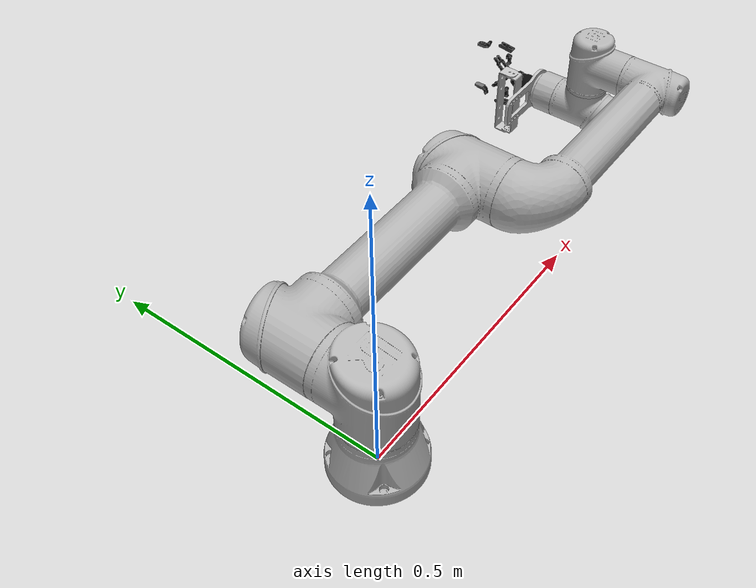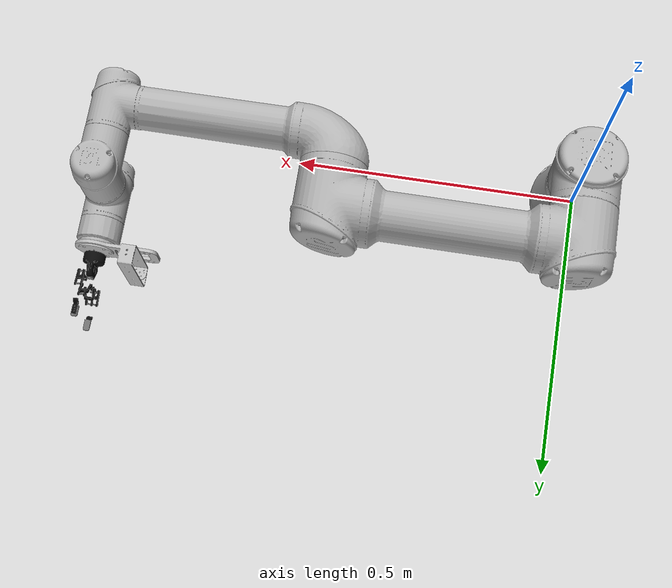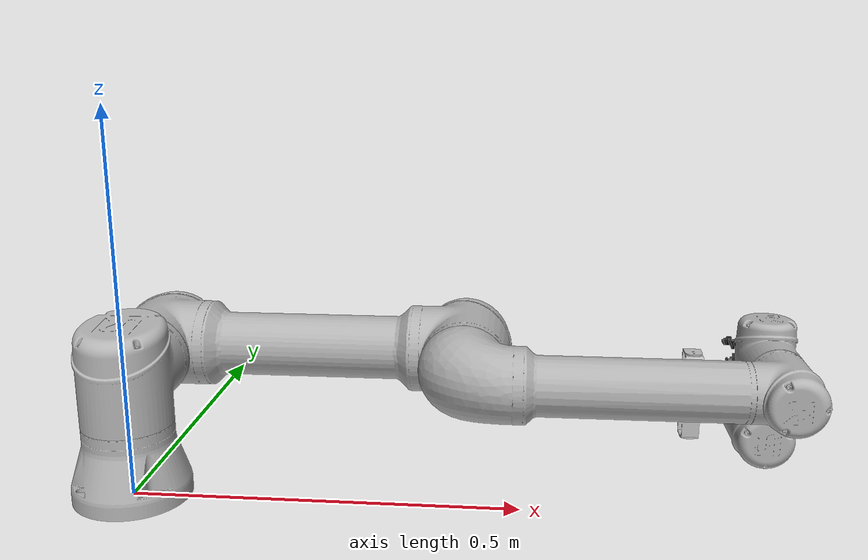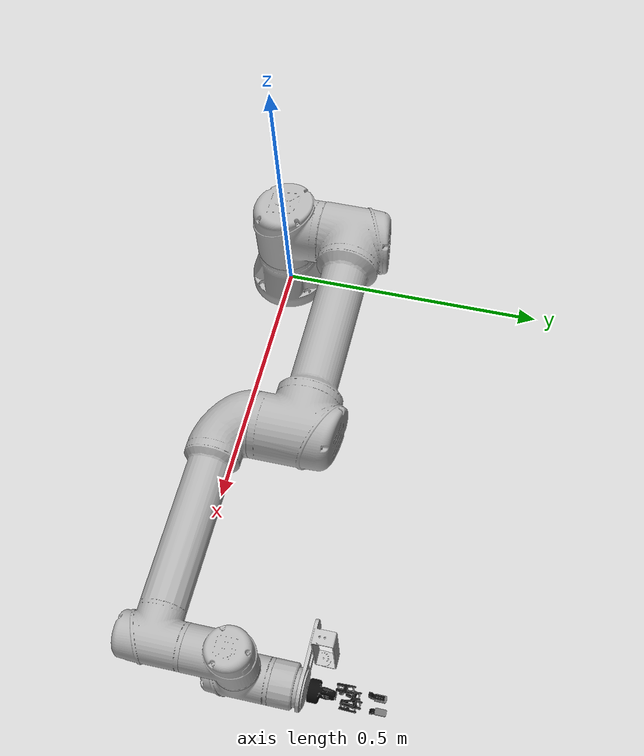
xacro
<?xml version="1.0"?>
<robot xmlns:xacro="http://ros.org/wiki/xacro"
       name="ur5e" >

  <!-- common stuff -->
  <!--xacro:include filename="$(find ur_e_description)/urdf/common.gazebo.xacro" /-->

  <!-- ur5e -->
  <xacro:include filename="$(find ur_e_description)/urdf/ur5e.urdf.xacro" />
  <!--xacro:arg name="kinematics_config" default="$(find ur_e_description)/cfg/default_kinematics.yaml" /-->

  <!-- arm -->
  <!--xacro:ur5e_robot prefix="" joint_limited="false"
    kinematics_file="$(load_yaml('$(arg kinematics_config)')}" /-->
  <xacro:ur5e_robot prefix="ur5e_" joint_limited="true"/>

  <!-- robotiq 85 gripper xacro -->
  <xacro:include filename="$(find robotiq_85_description)/urdf/robotiq_85_gripper.urdf.xacro" />

  <xacro:robotiq_85_gripper prefix="" parent="camera_bracket" >
    <origin xyz="0 0 0.006" rpy="3.1416 -1.5708 0"/>
  </xacro:robotiq_85_gripper>

  <link name="graps_link"/>

  <joint name="graps_link_joint" type="fixed">
    <parent link="camera_bracket"/>
    <child link="graps_link"/>
    <origin xyz="0 0 0.12" rpy="0 0 0"/>
  </joint>

  <link name="camera_bracket">
    <visual>
      <origin xyz="0 0 0" rpy="1.5708 0 1.5708" />
      <geometry>
        <mesh filename="package://summit_xl_description/meshes/structures/camera_bracket.STL"/>
      </geometry>
      <material name="silver">
        <color rgba="0.75 0.75 0.75 1"/>
      </material>
    </visual>
    <collision>
      <origin xyz="0 0 0" rpy="1.5708 0 1.5708" />
      <geometry>
        <mesh filename="package://summit_xl_description/meshes/structures/camera_bracket.STL"/>
      </geometry>
    </collision>
  </link>
  <!--link name="camera_bracket" type="fixed"/-->
  <joint name="camera_bracket_joint" type="fixed">
    <parent link="ur5e_tool0" />
    <child link = "camera_bracket" />
    <origin xyz="0 0 0.007" rpy="0 0 0" />
  </joint>

  <link name="hand_camera_link" type="fixed"/>
  <joint name="hand_camera_joint" type="fixed">
    <parent link="camera_bracket" />
    <child link = "hand_camera_link" />
    <origin xyz="0.0813 0 0.0239" rpy="0 0 0" />
  </joint>

</robot>

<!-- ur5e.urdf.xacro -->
<robot xmlns:xacro="http://ros.org/wiki/xacro">

  <xacro:include filename="$(find ur_e_description)/urdf/ur.transmission.xacro" />
  <xacro:include filename="$(find ur_e_description)/urdf/ur.gazebo.xacro" />

  <xacro:macro name="cylinder_inertial" params="radius length mass *origin">
    <inertial>
      <mass value="${mass}" />
      <xacro:insert_block name="origin" />
      <inertia ixx="${0.0833333 * mass * (3 * radius * radius + length * length)}" ixy="0.0" ixz="0.0"
        iyy="${0.0833333 * mass * (3 * radius * radius + length * length)}" iyz="0.0"
        izz="${0.5 * mass * radius * radius}" />
    </inertial>
  </xacro:macro>

  <xacro:macro name="ur5e_robot" params="prefix joint_limited
    shoulder_pan_lower_limit:=${-pi}    shoulder_pan_upper_limit:=${pi}
    shoulder_lift_lower_limit:=${-pi}    shoulder_lift_upper_limit:=${pi}
    elbow_joint_lower_limit:=${-pi}    elbow_joint_upper_limit:=${pi}
    wrist_1_lower_limit:=${-pi}    wrist_1_upper_limit:=${pi}
    wrist_2_lower_limit:=${-pi}    wrist_2_upper_limit:=${pi}
    wrist_3_lower_limit:=${-pi}    wrist_3_upper_limit:=${pi}
    transmission_hw_interface:=hardware_interface/PositionJointInterface
    safety_limits:=false safety_pos_margin:=0.15
    safety_k_position:=20">

    <!-- Inertia parameters -->
    <xacro:property name="base_mass" value="4.0" />  <!-- This mass might be incorrect -->
    <xacro:property name="shoulder_mass" value="3.7000" />
    <xacro:property name="upper_arm_mass" value="8.3930" />
    <xacro:property name="forearm_mass" value="2.2750" />
    <xacro:property name="wrist_1_mass" value="1.2190" />
    <xacro:property name="wrist_2_mass" value="1.2190" />
    <xacro:property name="wrist_3_mass" value="0.1879" />

    <xacro:property name="shoulder_cog" value="0.0 0.00193 -0.02561" />
    <xacro:property name="upper_arm_cog" value="0.0 -0.024201 0.2125" />
    <xacro:property name="forearm_cog" value="0.0 0.0265 0.11993" />
    <xacro:property name="wrist_1_cog" value="0.0 0.110949 0.01634" />
    <xacro:property name="wrist_2_cog" value="0.0 0.0018 0.11099" />
    <xacro:property name="wrist_3_cog" value="0.0 0.001159 0.0" />

    <!-- Kinematic model -->
    <!-- Properties from urcontrol.conf -->
    <xacro:property name="d1" value="0.163" />
    <xacro:property name="a2" value="-0.425" />
    <xacro:property name="a3" value="-0.392" />
    <xacro:property name="d4" value="0.127" />
    <xacro:property name="d5" value="0.100" />
    <xacro:property name="d6" value="0.100" />

    <!-- Arbitrary offsets for shoulder/elbow joints -->
    <xacro:property name="shoulder_offset" value="0.138" />
    <xacro:property name="elbow_offset" value="-0.131" />

    <!-- link lengths used in model -->
    <xacro:property name="shoulder_height" value="${d1}" />
    <xacro:property name="upper_arm_length" value="${-a2}" />
    <xacro:property name="forearm_length" value="${-a3}" />
    <xacro:property name="wrist_1_length" value="${d4}" />
    <xacro:property name="wrist_2_length" value="${d5}" />
    <xacro:property name="wrist_3_length" value="${d6}" />
    <!--property name="shoulder_height" value="0.089159" /-->
    <!--property name="shoulder_offset" value="0.13585" /-->  <!-- shoulder_offset - elbow_offset + wrist_1_length = 0.10915 -->
    <!--property name="upper_arm_length" value="0.42500" /-->
    <!--property name="elbow_offset" value="0.1197" /-->       <!-- CAD measured -->
    <!--property name="forearm_length" value="0.39225" /-->
    <!--property name="wrist_1_length" value="0.093" /-->     <!-- CAD measured -->
    <!--property name="wrist_2_length" value="0.09465" /-->   <!-- In CAD this distance is 0.930, but in the spec it is 0.09465 -->
    <!--property name="wrist_3_length" value="0.0823" /-->

    <xacro:property name="shoulder_radius" value="0.060" />   <!-- manually measured -->
    <xacro:property name="upper_arm_radius" value="0.054" />  <!-- manually measured -->
    <xacro:property name="elbow_radius" value="0.060" />      <!-- manually measured -->
    <xacro:property name="forearm_radius" value="0.040" />    <!-- manually measured -->
    <xacro:property name="wrist_radius" value="0.045" />      <!-- manually measured -->

    <link name="${prefix}base_link" >
      <visual>
        <geometry>
          <mesh filename="package://ur_e_description/meshes/ur5e/visual/base.dae" />
        </geometry>
        <material name="LightGrey">
          <color rgba="0.7 0.7 0.7 1.0"/>
        </material>
      </visual>
      <collision>
        <geometry>
          <mesh filename="package://ur_e_description/meshes/ur5e/collision/base.stl" />
        </geometry>
      </collision>
      <xacro:cylinder_inertial radius="0.06" length="0.05" mass="${base_mass}">
        <origin xyz="0.0 0.0 0.0" rpy="0 0 0" />
      </xacro:cylinder_inertial>
    </link>

    <joint name="${prefix}shoulder_pan_joint" type="revolute">
      <parent link="${prefix}base_link" />
      <child link = "${prefix}shoulder_link" />
      <origin xyz="0.0 0.0 ${shoulder_height}" rpy="0.0 0.0 0.0" />
      <axis xyz="0 0 1" />
      <xacro:unless value="${joint_limited}">
        <limit lower="${-2.0*pi}" upper="${2.0*pi}" effort="150.0" velocity="3.14"/>
        <xacro:if value="${safety_limits}">
          <safety_controller soft_lower_limit="${-2.0 * pi + safety_pos_margin}" soft_upper_limit="${2.0 * pi - safety_pos_margin}" k_position="${safety_k_position}" k_velocity="0.0"/>
        </xacro:if>
      </xacro:unless>
      <xacro:if value="${joint_limited}">
        <limit lower="${shoulder_pan_lower_limit}" upper="${shoulder_pan_upper_limit}" effort="150.0" velocity="3.14"/>
        <xacro:if value="${safety_limits}">
          <safety_controller soft_lower_limit="${shoulder_pan_lower_limit + safety_pos_margin}" soft_upper_limit="${shoulder_pan_upper_limit - safety_pos_margin}" k_position="${safety_k_position}" k_velocity="0.0"/>
        </xacro:if>
      </xacro:if>
      <dynamics damping="0.0" friction="0.0"/>
    </joint>

    <link name="${prefix}shoulder_link">
      <visual>
        <geometry>
          <mesh filename="package://ur_e_description/meshes/ur5e/visual/shoulder.dae" />
        </geometry>
        <material name="LightGrey">
          <color rgba="0.7 0.7 0.7 1.0"/>
        </material>
      </visual>
      <collision>
        <geometry>
          <mesh filename="package://ur_e_description/meshes/ur5e/collision/shoulder.stl" />
        </geometry>
      </collision>
      <xacro:cylinder_inertial radius="0.06" length="0.15" mass="${shoulder_mass}">
        <origin xyz="0.0 0.0 0.0" rpy="0 0 0" />
      </xacro:cylinder_inertial>
    </link>

    <joint name="${prefix}shoulder_lift_joint" type="revolute">
      <parent link="${prefix}shoulder_link" />
      <child link = "${prefix}upper_arm_link" />
      <origin xyz="0.0 ${shoulder_offset} 0.0" rpy="0.0 ${pi / 2.0} 0.0" />
      <axis xyz="0 1 0" />
      <xacro:unless value="${joint_limited}">
        <limit lower="${-2.0*pi}" upper="${2.0*pi}" effort="150.0" velocity="3.14"/>
        <xacro:if value="${safety_limits}">
          <safety_controller soft_lower_limit="${-2.0 * pi + safety_pos_margin}" soft_upper_limit="${2.0 * pi - safety_pos_margin}" k_position="${safety_k_position}" k_velocity="0.0"/>
        </xacro:if>
      </xacro:unless>
      <xacro:if value="${joint_limited}">
        <limit lower="${shoulder_lift_lower_limit}" upper="${shoulder_lift_upper_limit}" effort="150.0" velocity="3.14"/>
        <xacro:if value="${safety_limits}">
          <safety_controller soft_lower_limit="${shoulder_lift_lower_limit + safety_pos_margin}" soft_upper_limit="${shoulder_lift_upper_limit - safety_pos_margin}" k_position="${safety_k_position}" k_velocity="0.0"/>
        </xacro:if>
      </xacro:if>
      <dynamics damping="0.0" friction="0.0"/>
    </joint>

    <link name="${prefix}upper_arm_link">
      <visual>
        <geometry>
          <mesh filename="package://ur_e_description/meshes/ur5e/visual/upperarm.dae" />
        </geometry>
        <material name="LightGrey">
          <color rgba="0.7 0.7 0.7 1.0"/>
        </material>
      </visual>
      <collision>
        <geometry>
          <mesh filename="package://ur_e_description/meshes/ur5e/collision/upperarm.stl" />
        </geometry>
      </collision>
      <xacro:cylinder_inertial radius="0.06" length="${upper_arm_length}" mass="${upper_arm_mass}">
        <origin xyz="0.0 0.0 ${upper_arm_length/2}" rpy="0 0 0" />
      </xacro:cylinder_inertial>
    </link>

    <joint name="${prefix}elbow_joint" type="revolute">
      <parent link="${prefix}upper_arm_link" />
      <child link = "${prefix}forearm_link" />
      <origin xyz="0.0 ${elbow_offset} ${upper_arm_length}" rpy="0.0 0.0 0.0" />
      <axis xyz="0 1 0" />
      <xacro:unless value="${joint_limited}">
        <limit lower="${-2.0*pi}" upper="${2.0*pi}" effort="150.0" velocity="3.14"/>
        <xacro:if value="${safety_limits}">
          <safety_controller soft_lower_limit="${-2.0 * pi + safety_pos_margin}" soft_upper_limit="${2.0 * pi - safety_pos_margin}" k_position="${safety_k_position}" k_velocity="0.0"/>
        </xacro:if>
      </xacro:unless>
      <xacro:if value="${joint_limited}">
        <limit lower="${elbow_joint_lower_limit}" upper="${elbow_joint_upper_limit}" effort="150.0" velocity="3.14"/>
        <xacro:if value="${safety_limits}">
          <safety_controller soft_lower_limit="${elbow_joint_lower_limit + safety_pos_margin}" soft_upper_limit="${elbow_joint_upper_limit - safety_pos_margin}" k_position="${safety_k_position}" k_velocity="0.0"/>
        </xacro:if>
      </xacro:if>
      <dynamics damping="0.0" friction="0.0"/>
    </joint>

    <link name="${prefix}forearm_link">
      <visual>
        <geometry>
          <mesh filename="package://ur_e_description/meshes/ur5e/visual/forearm.dae" />
        </geometry>
        <material name="LightGrey">
          <color rgba="0.7 0.7 0.7 1.0"/>
        </material>
      </visual>
      <collision>
        <geometry>
          <mesh filename="package://ur_e_description/meshes/ur5e/collision/forearm.stl" />
        </geometry>
      </collision>
      <xacro:cylinder_inertial radius="0.06" length="${forearm_length}" mass="${forearm_mass}">
        <origin xyz="0.0 0.0 ${forearm_length/2}" rpy="0 0 0" />
      </xacro:cylinder_inertial>
    </link>

    <joint name="${prefix}wrist_1_joint" type="revolute">
      <parent link="${prefix}forearm_link" />
      <child link = "${prefix}wrist_1_link" />
      <origin xyz="0.0 0.0 ${forearm_length}" rpy="0.0 ${pi / 2.0} 0.0" />
      <axis xyz="0 1 0" />
      <xacro:unless value="${joint_limited}">
        <limit lower="${-2.0*pi}" upper="${2.0*pi}" effort="28.0" velocity="6.28"/>
        <xacro:if value="${safety_limits}">
          <safety_controller soft_lower_limit="${-2.0 * pi + safety_pos_margin}" soft_upper_limit="${2.0 * pi - safety_pos_margin}" k_position="${safety_k_position}" k_velocity="0.0"/>
        </xacro:if>
      </xacro:unless>
      <xacro:if value="${joint_limited}">
        <limit lower="${wrist_1_lower_limit}" upper="${wrist_1_upper_limit}" effort="28.0" velocity="6.28"/>
        <xacro:if value="${safety_limits}">
          <safety_controller soft_lower_limit="${wrist_1_lower_limit + safety_pos_margin}" soft_upper_limit="${wrist_1_upper_limit - safety_pos_margin}" k_position="${safety_k_position}" k_velocity="0.0"/>
        </xacro:if>
      </xacro:if>
      <dynamics damping="0.0" friction="0.0"/>
    </joint>

    <link name="${prefix}wrist_1_link">
      <visual>
        <geometry>
          <mesh filename="package://ur_e_description/meshes/ur5e/visual/wrist1.dae" />
        </geometry>
        <material name="LightGrey">
          <color rgba="0.7 0.7 0.7 1.0"/>
        </material>
      </visual>
      <collision>
        <geometry>
          <mesh filename="package://ur_e_description/meshes/ur5e/collision/wrist1.stl" />
        </geometry>
      </collision>
      <xacro:cylinder_inertial radius="0.06" length="0.12" mass="${wrist_1_mass}">
        <origin xyz="0.0 ${wrist_1_length} 0.0" rpy="0 0 0" />
      </xacro:cylinder_inertial>
    </link>

    <joint name="${prefix}wrist_2_joint" type="revolute">
      <parent link="${prefix}wrist_1_link" />
      <child link = "${prefix}wrist_2_link" />
      <origin xyz="0.0 ${wrist_1_length} 0.0" rpy="0.0 0.0 0.0" />
      <axis xyz="0 0 1" />
      <xacro:unless value="${joint_limited}">
        <limit lower="${-2.0*pi}" upper="${2.0*pi}" effort="28.0" velocity="6.28"/>
        <xacro:if value="${safety_limits}">
          <safety_controller soft_lower_limit="${-2.0 * pi + safety_pos_margin}" soft_upper_limit="${2.0 * pi - safety_pos_margin}" k_position="${safety_k_position}" k_velocity="0.0"/>
        </xacro:if>
      </xacro:unless>
      <xacro:if value="${joint_limited}">
        <limit lower="${wrist_2_lower_limit}" upper="${wrist_2_upper_limit}" effort="28.0" velocity="6.28"/>
        <xacro:if value="${safety_limits}">
          <safety_controller soft_lower_limit="${wrist_2_lower_limit + safety_pos_margin}" soft_upper_limit="${wrist_2_upper_limit - safety_pos_margin}" k_position="${safety_k_position}" k_velocity="0.0"/>
        </xacro:if>
      </xacro:if>
      <dynamics damping="0.0" friction="0.0"/>
    </joint>

    <link name="${prefix}wrist_2_link">
      <visual>
        <geometry>
          <mesh filename="package://ur_e_description/meshes/ur5e/visual/wrist2.dae" />
        </geometry>
        <material name="LightGrey">
          <color rgba="0.7 0.7 0.7 1.0"/>
        </material>
      </visual>
      <collision>
        <geometry>
          <mesh filename="package://ur_e_description/meshes/ur5e/collision/wrist2.stl" />
        </geometry>
      </collision>
      <xacro:cylinder_inertial radius="0.06" length="0.12" mass="${wrist_2_mass}">
        <origin xyz="0.0 0.0 ${wrist_2_length}" rpy="0 0 0" />
      </xacro:cylinder_inertial>
    </link>

    <joint name="${prefix}wrist_3_joint" type="revolute">
      <parent link="${prefix}wrist_2_link" />
      <child link = "${prefix}wrist_3_link" />
      <origin xyz="0.0 0.0 ${wrist_2_length}" rpy="0.0 0.0 0.0" />
      <axis xyz="0 1 0" />
      <xacro:unless value="${joint_limited}">
        <limit lower="${-2.0*pi}" upper="${2.0*pi}" effort="28.0" velocity="6.28"/>
        <xacro:if value="${safety_limits}">
          <safety_controller soft_lower_limit="${-2.0 * pi + safety_pos_margin}" soft_upper_limit="${2.0 * pi - safety_pos_margin}" k_position="${safety_k_position}" k_velocity="0.0"/>
        </xacro:if>
      </xacro:unless>
      <xacro:if value="${joint_limited}">
        <limit lower="${wrist_3_lower_limit}" upper="${wrist_3_upper_limit}" effort="28.0" velocity="6.28"/>
        <xacro:if value="${safety_limits}">
          <safety_controller soft_lower_limit="${wrist_3_lower_limit + safety_pos_margin}" soft_upper_limit="${wrist_3_upper_limit - safety_pos_margin}" k_position="${safety_k_position}" k_velocity="0.0"/>
        </xacro:if>
      </xacro:if>
      <dynamics damping="0.0" friction="0.0"/>
    </joint>

    <link name="${prefix}wrist_3_link">
      <visual>
        <geometry>
          <mesh filename="package://ur_e_description/meshes/ur5e/visual/wrist3.dae" />
        </geometry>
        <material name="LightGrey">
          <color rgba="0.7 0.7 0.7 1.0"/>
        </material>
      </visual>
      <collision>
        <geometry>
          <mesh filename="package://ur_e_description/meshes/ur5e/collision/wrist3.stl" />
        </geometry>
      </collision>
      <xacro:cylinder_inertial radius="0.0375" length="0.0458" mass="${wrist_3_mass}">
        <origin xyz="0.0 ${wrist_3_length - 0.0458/2} 0.0" rpy="${pi/2} 0 0" />
      </xacro:cylinder_inertial>
    </link>

    <joint name="${prefix}ee_fixed_joint" type="fixed">
      <parent link="${prefix}wrist_3_link" />
      <child link = "${prefix}ee_link" />
      <origin xyz="0.0 ${wrist_3_length} 0.0" rpy="0.0 0.0 ${pi/2.0}" />
    </joint>

    <link name="${prefix}ee_link">
      <collision>
        <geometry>
          <box size="0.01 0.01 0.01"/>
        </geometry>
        <origin rpy="0 0 0" xyz="-0.01 0 0"/>
      </collision>
    </link>

    <xacro:ur_arm_transmission prefix="${prefix}" />
    <xacro:ur_arm_gazebo prefix="${prefix}" />

    <!-- ROS base_link to UR 'Base' Coordinates transform -->
    <link name="${prefix}base"/>
    <joint name="${prefix}base_link-base_fixed_joint" type="fixed">
      <!-- NOTE: this rotation is only needed as long as base_link itself is
                 not corrected wrt the real robot (ie: rotated over 180
                 degrees)
      -->
      <origin xyz="0 0 0" rpy="0 0 0"/>
      <parent link="${prefix}base"/>
      <child link="${prefix}base_link"/>
    </joint>

    <!-- Frame coincident with all-zeros TCP on UR controller -->
    <link name="${prefix}tool0"/>
    <joint name="${prefix}wrist_3_link-tool0_fixed_joint" type="fixed">
      <origin xyz="0 ${wrist_3_length} 0" rpy="${pi/-2.0} 0 0"/>
      <parent link="${prefix}wrist_3_link"/>
      <child link="${prefix}tool0"/>
    </joint>

  </xacro:macro>
</robot>

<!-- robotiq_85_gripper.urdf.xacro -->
<robot name="robotiq_85_gripper" xmlns:xacro="http://ros.org/wiki/xacro">
    <xacro:include filename="$(find robotiq_85_description)/urdf/robotiq_85_gripper.transmission.xacro" />

    <xacro:macro name="robotiq_85_gripper" params="prefix parent *origin">

        <joint name="${prefix}gripper_base_joint" type="fixed">
            <parent link="${parent}"/>
            <child link="${prefix}gripper_base_link"/>
            <xacro:insert_block name="origin"/>
        </joint>

        <link name="${prefix}gripper_base_link">
            <visual>
                <geometry>
                    <mesh filename="package://robotiq_85_description/meshes/visual/robotiq_85_base_link.dae"/>
                </geometry>
            </visual>
            <collision>
                <geometry>
                    <mesh filename="package://robotiq_85_description/meshes/collision/robotiq_85_base_link.stl"/>
                </geometry>
            </collision>
            <inertial>
                <mass value="0.636951" />
                <origin xyz="0.0 0.0 0.0" />
                <inertia ixx = "0.000380" ixy = "0.000000" ixz = "0.000000"
                         iyx = "0.000000" iyy = "0.001110" iyz = "0.000000"
                         izx = "0.000000" izy = "0.000000" izz = "0.001171" />
            </inertial>
        </link>

        <gazebo reference="${prefix}gripper_base_link">
            <implicitSpringDamper>1</implicitSpringDamper>
            <mu1>100000</mu1>
            <mu2>100000</mu2>
            <kp>100000000.0</kp>
            <kd>1.0</kd>
        </gazebo>

        <joint name="${prefix}gripper_finger1_joint" type="revolute">
            <parent link="${prefix}gripper_base_link"/>
            <child link="${prefix}gripper_finger1_knuckle_link"/>
            <axis xyz="0 0 1"/>
            <origin rpy="${pi} 0.0 0.0" xyz="0.05490451627 0.03060114443 0.0"/>
            <limit lower="0.0" upper="0.804" velocity="2.0" effort="1000"/>
        </joint>

        <joint name="${prefix}gripper_finger2_joint" type="revolute">
            <parent link="${prefix}gripper_base_link"/>
            <child link="${prefix}gripper_finger2_knuckle_link"/>
            <axis xyz="0 0 1"/>
            <origin rpy="0.0 0.0 0.0" xyz="0.05490451627 -0.03060114443 0.0"/>
            <limit lower="-3.14" upper="3.14" velocity="100.0" effort="1000"/>
            <mimic joint="${prefix}gripper_finger1_joint"/>
        </joint>

        <link name="${prefix}gripper_finger1_knuckle_link">
            <visual>
                <geometry>
                    <mesh filename="package://robotiq_85_description/meshes/visual/robotiq_85_knuckle_link.dae"/>
                </geometry>
            </visual>
            <collision>
                <geometry>
                    <mesh filename="package://robotiq_85_description/meshes/collision/robotiq_85_knuckle_link.stl"/>
                </geometry>
            </collision>
            <inertial>
                <mass value="0.018491" />
                <origin xyz="0.0 0.0 0.0" />
                <inertia ixx = "0.000009" ixy = "-0.000001" ixz = "0.000000"
                         iyx = "-0.000001" iyy = "0.000001" iyz = "0.000000"
                         izx = "0.000000" izy = "0.000000" izz = "0.000010" />
            </inertial>
        </link>

        <gazebo reference="${prefix}gripper_finger1_knuckle_link">
            <implicitSpringDamper>1</implicitSpringDamper>
            <mu1>100000</mu1>
            <mu2>100000</mu2>
            <kp>100000000.0</kp>
            <kd>1.0</kd>
        </gazebo>

        <link name="${prefix}gripper_finger2_knuckle_link">
            <visual>
                <geometry>
                    <mesh filename="package://robotiq_85_description/meshes/visual/robotiq_85_knuckle_link.dae"/>
                </geometry>
            </visual>
            <collision>
                <geometry>
                    <mesh filename="package://robotiq_85_description/meshes/collision/robotiq_85_knuckle_link.stl"/>
                </geometry>
            </collision>
            <inertial>
                <mass value="0.018491" />
                <origin xyz="0.0 0.0 0.0" />
                <inertia ixx = "0.000009" ixy = "-0.000001" ixz = "0.000000"
                         iyx = "-0.000001" iyy = "0.000001" iyz = "0.000000"
                         izx = "0.000000" izy = "0.000000" izz = "0.000010" />
            </inertial>
        </link>

        <gazebo reference="${prefix}gripper_finger2_knuckle_link">
            <implicitSpringDamper>1</implicitSpringDamper>
            <mu1>100000</mu1>
            <mu2>100000</mu2>
            <kp>100000000.0</kp>
            <kd>1.0</kd>
        </gazebo>

        <joint name="${prefix}gripper_finger1_finger_joint" type="fixed">
            <parent link="${prefix}gripper_finger1_knuckle_link"/>
            <child link="${prefix}gripper_finger1_finger_link"/>
            <origin xyz="-0.00408552455 -0.03148604435 0.0" rpy="0 0 0" />
        </joint>

        <joint name="${prefix}gripper_finger2_finger_joint" type="fixed">
            <parent link="${prefix}gripper_finger2_knuckle_link"/>
            <child link="${prefix}gripper_finger2_finger_link"/>
            <origin xyz="-0.00408552455 -0.03148604435 0.0" rpy="0 0 0" />
        </joint>

        <link name="${prefix}gripper_finger1_finger_link">
            <visual>
                <geometry>
                    <mesh filename="package://robotiq_85_description/meshes/visual/robotiq_85_finger_link.dae"/>
                </geometry>
            </visual>
            <collision>
                <geometry>
                    <mesh filename="package://robotiq_85_description/meshes/collision/robotiq_85_finger_link.stl"/>
                </geometry>
            </collision>
            <inertial>
                <mass value="0.027309" />
                <origin xyz="0.0 0.0 0.0" />
                <inertia ixx = "0.000003" ixy = "-0.000002" ixz = "0.000000"
                         iyx = "-0.000002" iyy = "0.000021" iyz = "0.000000"
                         izx = "0.000000" izy = "0.000000" izz = "0.000020" />
            </inertial>
        </link>

        <gazebo reference="${prefix}gripper_finger1_finger_link">
            <implicitSpringDamper>1</implicitSpringDamper>
            <mu1>100000</mu1>
            <mu2>100000</mu2>
            <kp>100000000.0</kp>
            <kd>1.0</kd>
        </gazebo>

        <link name="${prefix}gripper_finger2_finger_link">
            <visual>
                <geometry>
                    <mesh filename="package://robotiq_85_description/meshes/visual/robotiq_85_finger_link.dae"/>
                </geometry>
            </visual>
            <collision>
                <geometry>
                    <mesh filename="package://robotiq_85_description/meshes/collision/robotiq_85_finger_link.stl"/>
                </geometry>
            </collision>
            <inertial>
                <mass value="0.027309" />
                <origin xyz="0.0 0.0 0.0" />
                <inertia ixx = "0.000003" ixy = "-0.000002" ixz = "0.000000"
                         iyx = "-0.000002" iyy = "0.000021" iyz = "0.000000"
                         izx = "0.000000" izy = "0.000000" izz = "0.000020" />
            </inertial>
        </link>

        <gazebo reference="${prefix}gripper_finger2_finger_link">
            <implicitSpringDamper>1</implicitSpringDamper>
            <mu1>100000</mu1>
            <mu2>100000</mu2>
            <kp>100000000.0</kp>
            <kd>1.0</kd>
        </gazebo>

        <joint name="${prefix}gripper_finger1_inner_knuckle_joint" type="revolute">
            <parent link="${prefix}gripper_base_link"/>
            <child link="${prefix}gripper_finger1_inner_knuckle_link"/>
            <axis xyz="0 0 1"/>
            <origin xyz="0.06142 0.0127 0" rpy="${pi} 0.0 0.0" />
            <limit lower="-3.14" upper="3.14" velocity="100.0" effort="0.1"/>
            <mimic joint="${prefix}gripper_finger1_joint" offset="0"/>
        </joint>

        <joint name="${prefix}gripper_finger2_inner_knuckle_joint" type="revolute">
            <parent link="${prefix}gripper_base_link"/>
            <child link="${prefix}gripper_finger2_inner_knuckle_link"/>
            <axis xyz="0 0 1"/>
            <origin xyz="0.06142 -0.0127 0" rpy="0 0 0"/>
            <limit lower="-3.14" upper="3.14" velocity="100.0" effort="0.1"/>
            <mimic joint="${prefix}gripper_finger1_joint" offset="0"/>
        </joint>

        <link name="${prefix}gripper_finger1_inner_knuckle_link">
            <visual>
                <geometry>
                    <mesh filename="package://robotiq_85_description/meshes/visual/robotiq_85_inner_knuckle_link.dae"/>
                </geometry>
            </visual>
            <collision>
                <geometry>
                    <mesh filename="package://robotiq_85_description/meshes/collision/robotiq_85_inner_knuckle_link.stl"/>
                </geometry>
            </collision>
            <inertial>
                <mass value="0.029951" />
                <origin xyz="0.0 0.0 0.0" />
                <inertia ixx = "0.000039" ixy = "0.000000" ixz = "0.000000"
                         iyx = "0.000000" iyy = "0.000005" iyz = "0.000000"
                         izx = "0.000000" izy = "0.000000" izz = "0.000035" />
            </inertial>
        </link>

        <gazebo reference="${prefix}gripper_finger1_inner_knuckle_link">
            <implicitSpringDamper>1</implicitSpringDamper>
            <mu1>100000</mu1>
            <mu2>100000</mu2>
            <kp>100000000.0</kp>
            <kd>1.0</kd>
        </gazebo>

        <link name="${prefix}gripper_finger2_inner_knuckle_link">
            <visual>
                <geometry>
                    <mesh filename="package://robotiq_85_description/meshes/visual/robotiq_85_inner_knuckle_link.dae"/>
                </geometry>
            </visual>
            <collision>
                <geometry>
                    <mesh filename="package://robotiq_85_description/meshes/collision/robotiq_85_inner_knuckle_link.stl"/>
                </geometry>
            </collision>
            <inertial>
                <mass value="0.029951" />
                <origin xyz="0.0 0.0 0.0" />
                <inertia ixx = "0.000039" ixy = "0.000000" ixz = "0.000000"
                         iyx = "0.000000" iyy = "0.000005" iyz = "0.000000"
                         izx = "0.000000" izy = "0.000000" izz = "0.000035" />
            </inertial>
        </link>

        <gazebo reference="${prefix}gripper_finger2_inner_knuckle_link">
            <implicitSpringDamper>1</implicitSpringDamper>
            <mu1>100000</mu1>
            <mu2>100000</mu2>
            <kp>100000000.0</kp>
            <kd>1.0</kd>
        </gazebo>

        <joint name="${prefix}gripper_finger1_finger_tip_joint" type="revolute">
            <parent link="${prefix}gripper_finger1_inner_knuckle_link"/>
            <child link="${prefix}gripper_finger1_finger_tip_link"/>
            <axis xyz="0 0 1"/>
            <origin xyz="0.04303959807 -0.03759940821 0.0" rpy="0.0 0.0 0.0"/>
            <limit lower="-3.14" upper="3.14" velocity="100.0" effort="0.1"/>
            <mimic joint="${prefix}gripper_finger1_joint" multiplier="-1"/>
        </joint>

        <joint name="${prefix}gripper_finger2_finger_tip_joint" type="revolute">
            <parent link="${prefix}gripper_finger2_inner_knuckle_link"/>
            <child link="${prefix}gripper_finger2_finger_tip_link"/>
            <axis xyz="0 0 1"/>
            <origin rpy="0.0 0.0 0.0" xyz="0.04303959807 -0.03759940821  0.0"/>
            <limit lower="-3.14" upper="3.14" velocity="100.0" effort="0.1"/>
            <mimic joint="${prefix}gripper_finger1_joint" multiplier="-1"/>
        </joint>

        <link name="${prefix}gripper_finger1_finger_tip_link">
            <visual>
                <geometry>
                    <mesh filename="package://robotiq_85_description/meshes/visual/robotiq_85_finger_tip_link.dae"/>
                </geometry>
            </visual>
            <collision>
                <geometry>
                    <mesh filename="package://robotiq_85_description/meshes/collision/robotiq_85_finger_tip_link.stl"/>
                </geometry>
            </collision>
            <inertial>
                <mass value="0.019555" />
                <origin xyz="0.0 0.0 0.0" />
                <inertia ixx = "0.000002" ixy = "0.000000" ixz = "0.000000"
                         iyx = "0.000000" iyy = "0.000005" iyz = "0.000000"
                         izx = "0.000000" izy = "0.000000" izz = "0.000006" />
            </inertial>
        </link>

        <gazebo reference="${prefix}gripper_finger1_finger_tip_link">
            <implicitSpringDamper>1</implicitSpringDamper>
            <mu1>100000</mu1>
            <mu2>100000</mu2>
            <kp>100000000.0</kp>
            <kd>1.0</kd>
        </gazebo>

        <link name="${prefix}gripper_finger2_finger_tip_link">
            <visual>
                <geometry>
                    <mesh filename="package://robotiq_85_description/meshes/visual/robotiq_85_finger_tip_link.dae"/>
                </geometry>
            </visual>
            <collision>
                <geometry>
                    <mesh filename="package://robotiq_85_description/meshes/collision/robotiq_85_finger_tip_link.stl"/>
                </geometry>
            </collision>
            <inertial>
                <mass value="0.019555" />
                <origin xyz="0.0 0.0 0.0" />
                <inertia ixx = "0.000002" ixy = "0.000000" ixz = "0.000000"
                         iyx = "0.000000" iyy = "0.000005" iyz = "0.000000"
                         izx = "0.000000" izy = "0.000000" izz = "0.000006" />
            </inertial>
        </link>

        <gazebo reference="${prefix}gripper_finger2_finger_tip_link">
            <implicitSpringDamper>1</implicitSpringDamper>
            <mu1>100000</mu1>
            <mu2>100000</mu2>
            <kp>100000000.0</kp>
            <kd>1.0</kd>
        </gazebo>

        <xacro:robotiq_85_gripper_transmission prefix="${prefix}" />

    </xacro:macro>
</robot>
